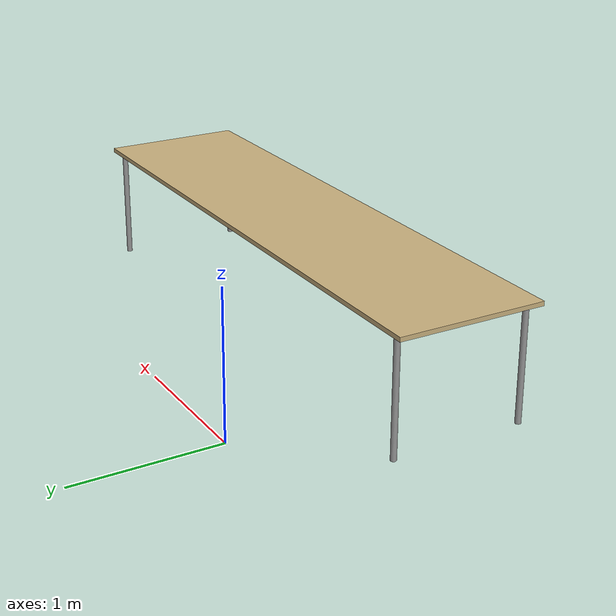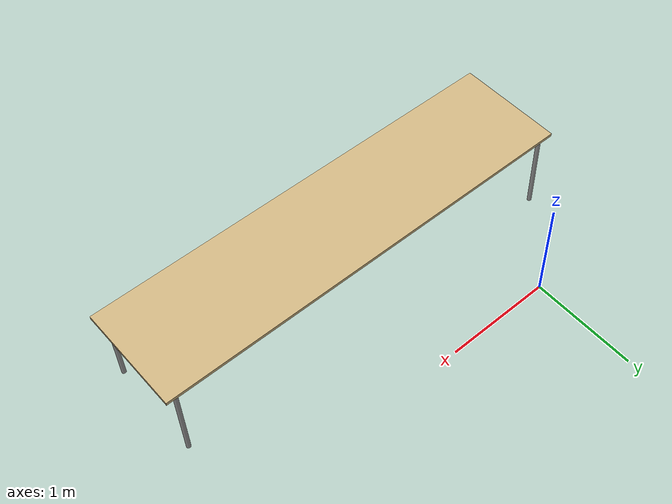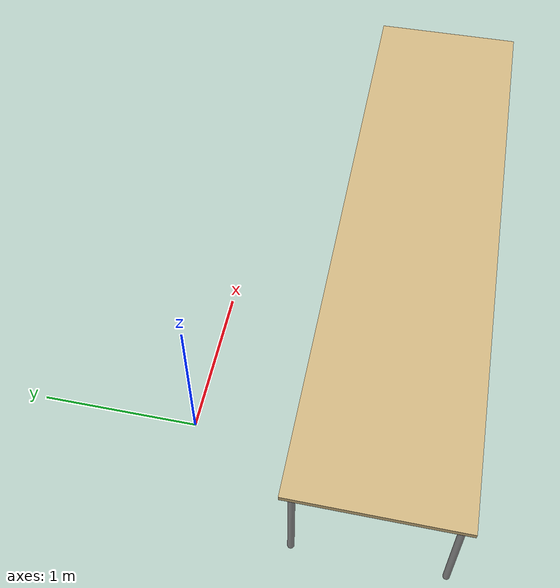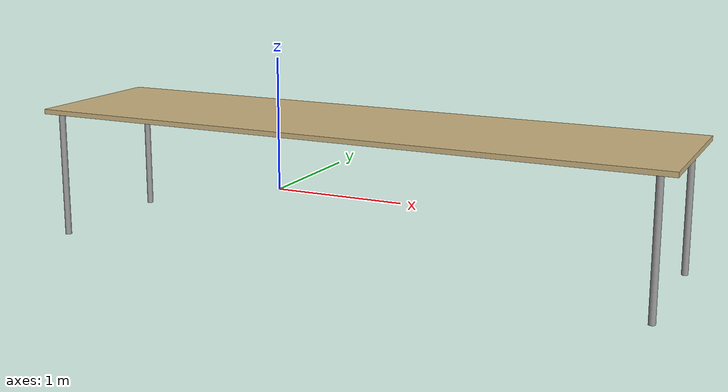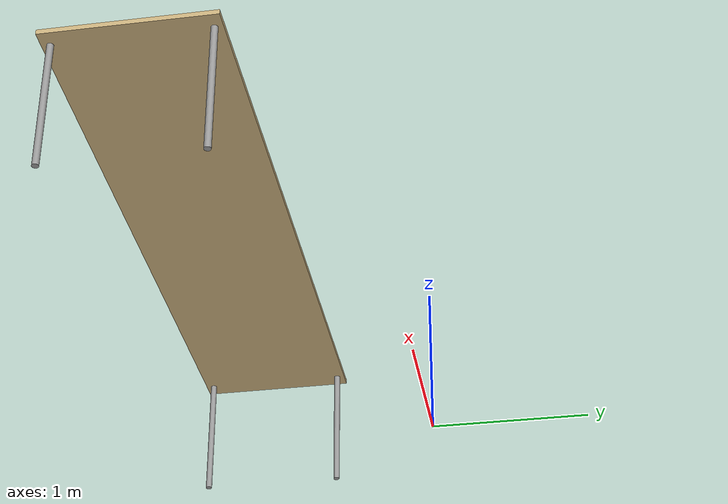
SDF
<?xml version="1.0" ?>
<sdf version="1.5">
  <model name="table">
    <static>true</static>
    <link name="link">
      <collision name="surface">
        <pose>1.25 -1.2 0.815 0 0 0</pose>
        <geometry>
          <box>
            <size>4 1 0.03</size>
          </box>
        </geometry>
        <surface>
          <friction>
            <ode>
              <mu>0.6</mu>
              <mu2>0.6</mu2>
            </ode>
          </friction>
        </surface>
      </collision>
      <visual name="visual1">
        <pose>1.25 -1.2 0.815 0 0 0</pose>
        <geometry>
          <box>
            <size>4 1 0.03</size>
          </box>
        </geometry>
        <material>
          <ambient>0.8 0.7 0.5 0.9</ambient>
        </material>
      </visual>
      <collision name="front_left_leg">
        <pose>3.15 -0.75 0.4 0 0 0</pose>
        <geometry>
          <cylinder>
            <radius>0.02</radius>
            <length>0.8</length>
          </cylinder>
        </geometry>
      </collision>
      <visual name="front_left_leg">
        <pose>3.15 -0.75 0.4 0 0 0</pose>
        <geometry>
          <cylinder>
            <radius>0.02</radius>
            <length>0.8</length>
          </cylinder>
        </geometry>
        <material>
          <script>
            <uri>file://media/materials/scripts/gazebo.material</uri>
            <name>Gazebo/Grey</name>
          </script>
        </material>
      </visual>
      <collision name="front_right_leg">
        <pose>3.15 -1.65 0.4 0 0 0</pose>
        <geometry>
          <cylinder>
            <radius>0.02</radius>
            <length>0.8</length>
          </cylinder>
        </geometry>
      </collision>
      <visual name="front_right_leg">
        <pose>3.15 -1.65 0.4 0 0 0</pose>
        <geometry>
          <cylinder>
            <radius>0.02</radius>
            <length>0.8</length>
          </cylinder>
        </geometry>
        <material>
          <script>
            <uri>file://media/materials/scripts/gazebo.material</uri>
            <name>Gazebo/Grey</name>
          </script>
        </material>
      </visual>
      <collision name="back_right_leg">
        <pose>-0.65 -1.65 0.4 0 0 0</pose>
        <geometry>
          <cylinder>
            <radius>0.02</radius>
            <length>0.8</length>
          </cylinder>
        </geometry>
      </collision>
      <visual name="back_right_leg">
        <pose>-0.65 -1.65 0.4 0 0 0</pose>
        <geometry>
          <cylinder>
            <radius>0.02</radius>
            <length>0.8</length>
          </cylinder>
        </geometry>
        <material>
          <script>
            <uri>file://media/materials/scripts/gazebo.material</uri>
            <name>Gazebo/Grey</name>
          </script>
        </material>
      </visual>
      <collision name="back_left_leg">
        <pose>-0.65 -0.75 0.4 0 0 0</pose>
        <geometry>
          <cylinder>
            <radius>0.02</radius>
            <length>0.8</length>
          </cylinder>
        </geometry>
      </collision>
      <visual name="back_left_leg">
        <pose>-0.65 -0.75 0.4 0 0 0</pose>
        <geometry>
          <cylinder>
            <radius>0.02</radius>
            <length>0.8</length>
          </cylinder>
        </geometry>
        <material>
          <script>
            <uri>file://media/materials/scripts/gazebo.material</uri>
            <name>Gazebo/Grey</name>
          </script>
        </material>
      </visual>
    </link>
  </model>
</sdf>
